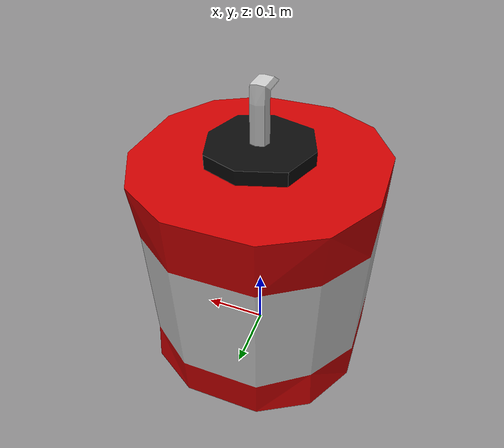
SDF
<?xml version="1.0" ?>
<sdf version="1.7">
  <model name="penguin_bomb">
    <static>false</static>

    <link name="penguin_bomb_link">

      <visual name="penguin_bomb_visual">
        <geometry>
          <mesh>
            <uri>model://penguin_bomb/meshes/penguin_bomb.dae</uri>
            <scale>1 1 1</scale>
          </mesh>
        </geometry>
      </visual>

      <collision name="penguin_bomb_collision">
        <geometry>
          <mesh>
            <uri>model://penguin_bomb/meshes/penguin_bomb.dae</uri>
            <scale>1 1 1</scale>
          </mesh>
        </geometry>
      </collision>

    </link>
  </model>
</sdf>
